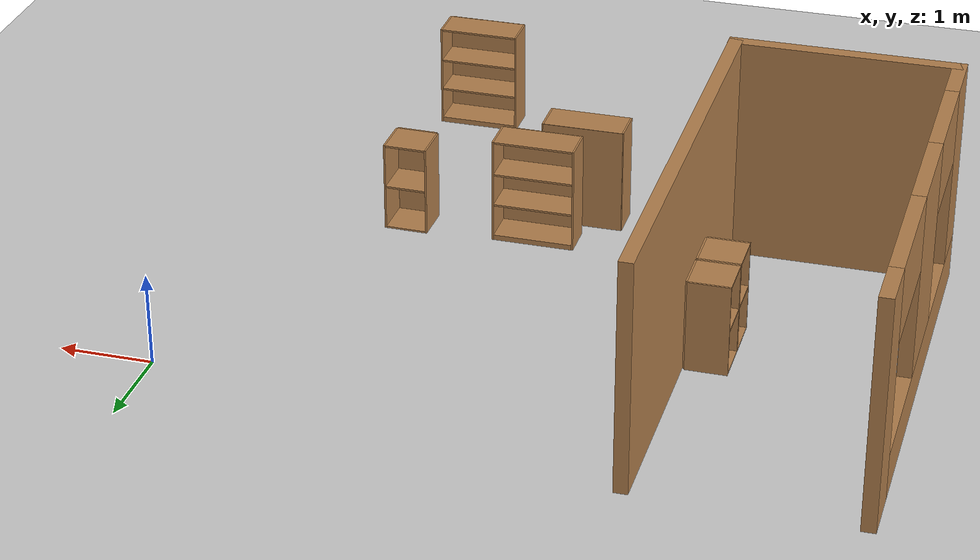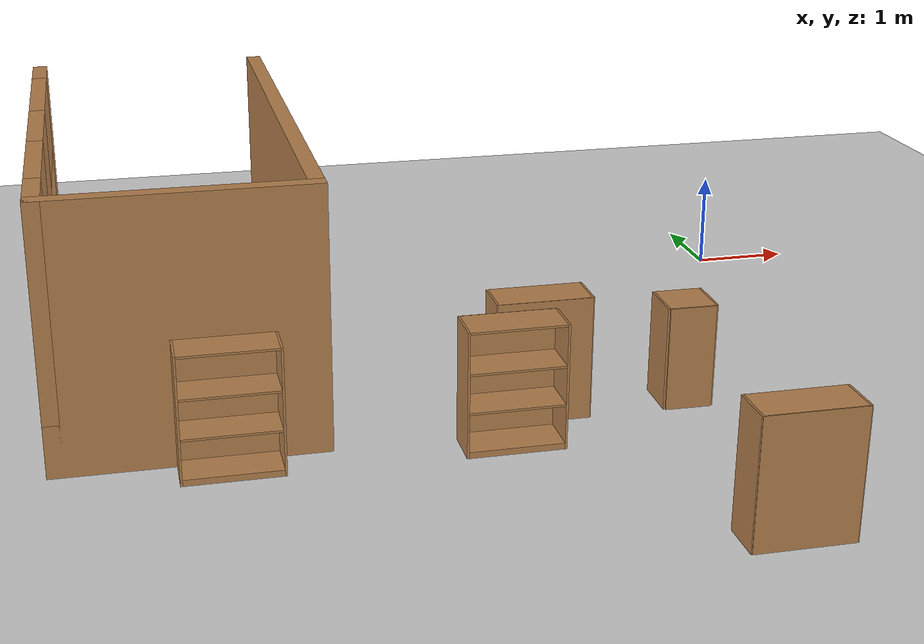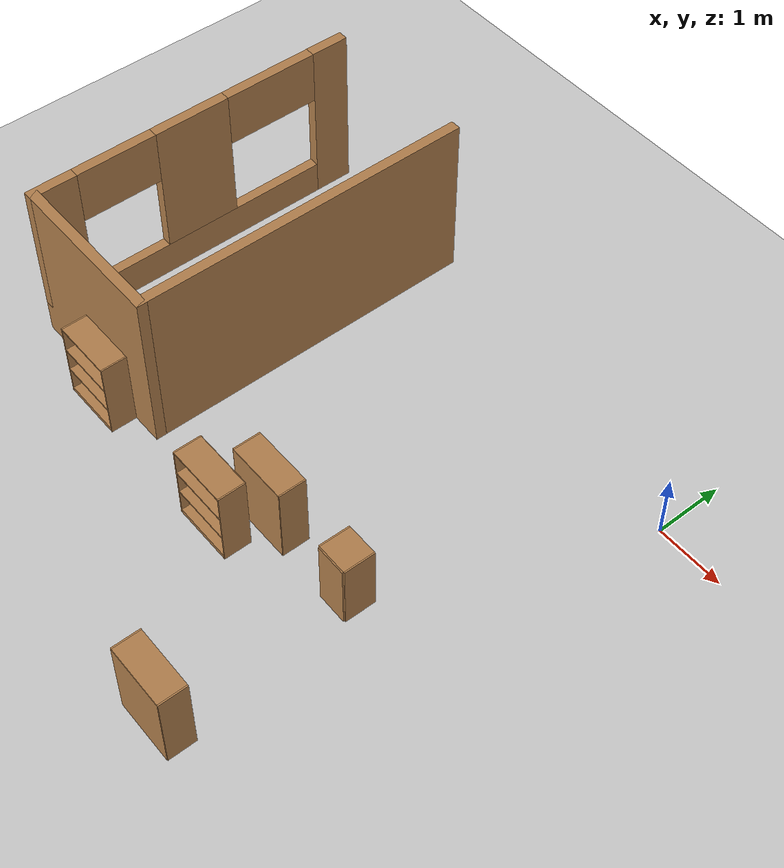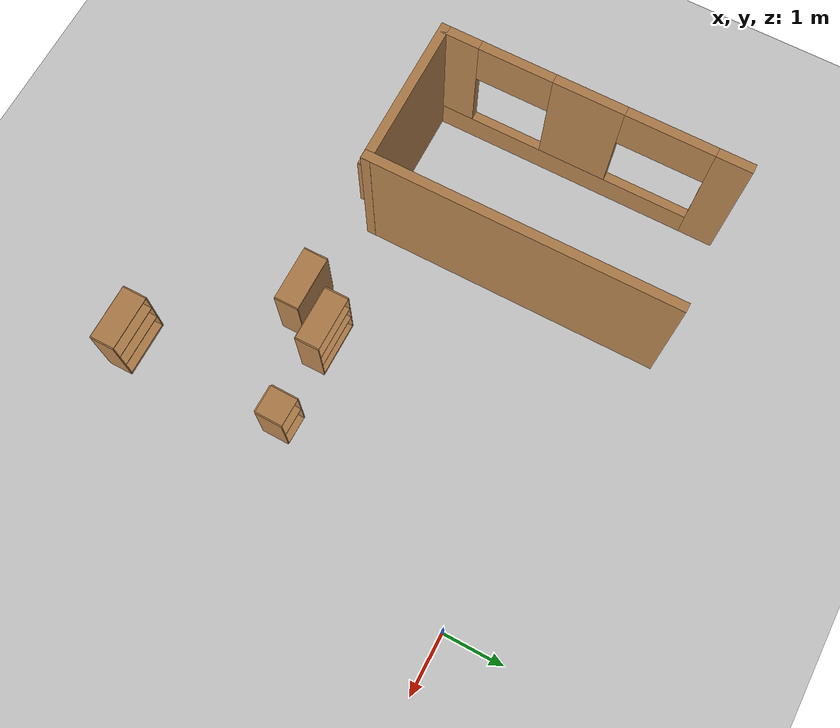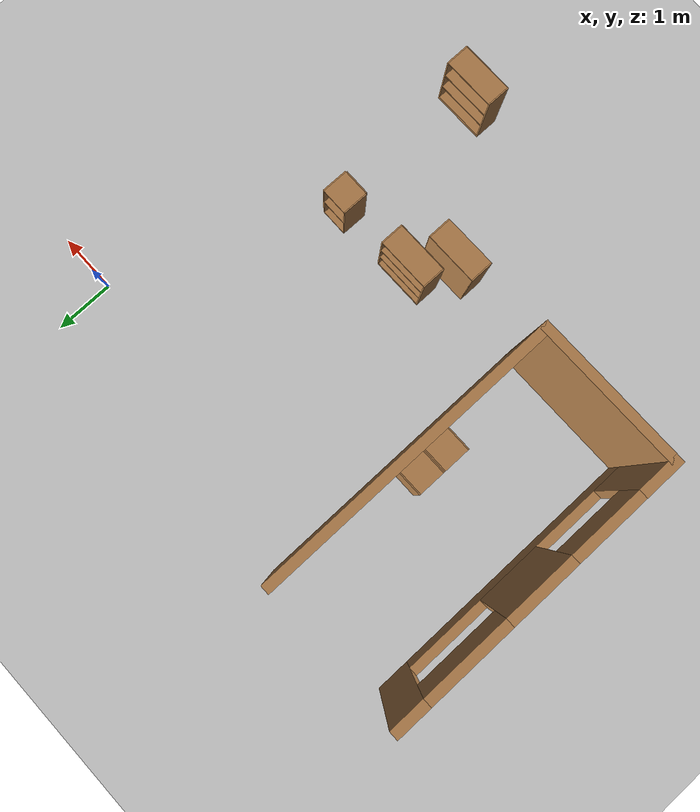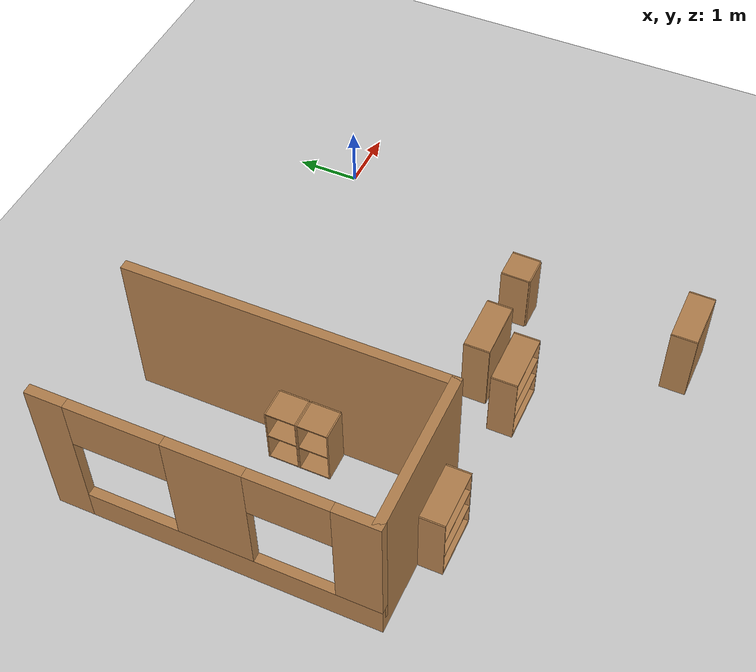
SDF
<sdf version="1.6">
 <world name="default">
  <model name="ground_plane">
   <static>1</static>
   <link name="link">
    <collision name="collision">
     <geometry><plane><normal>0 0 1</normal><size>100 100</size></plane></geometry>
     <surface>
      <contact><collide_bitmask>65535</collide_bitmask></contact>
      <friction><ode><mu>100</mu><mu2>50</mu2></ode></friction>
     </surface>
    </collision>
    <visual name="visual">
     <cast_shadows>0</cast_shadows>
     <geometry><plane><normal>0 0 1</normal><size>100 100</size></plane></geometry>
     <material>
      <script><uri>file://media/materials/scripts/gazebo.material</uri><name>Gazebo/Grey</name></script>
     </material>
    </visual>
   </link>
  </model>
  <model name="turtlebot3_house">
   <pose>0.006915 0.007382 0 0 -0 0</pose>
   <link name="Wall_86">
    <pose>-7.5 -1.5 0 0 0 -1.5708</pose>
    <visual name="Wall_86_Visual_1">
     <pose>0.28462 0 0.25 0 -0 0</pose>
     <geometry><box><size>4.43076 0.15 0.5</size></box></geometry>
     <material>
      <script><uri>file://media/materials/scripts/gazebo.material</uri><name>Gazebo/Wood</name></script>
      <ambient>1 1 1 1</ambient>
      <diffuse>1 1 1 1</diffuse>
      <specular>0.2 0.2 0.2 1</specular>
      <emissive>0 0 0 1</emissive>
     </material>
    </visual>
    <visual name="Wall_86_Visual_4">
     <pose>-1.22476 0 2.1 0 -0 0</pose>
     <geometry><box><size>1.412 0.15 0.8</size></box></geometry>
     <material>
      <script><uri>file://media/materials/scripts/gazebo.material</uri><name>Gazebo/Wood</name></script>
      <ambient>1 1 1 1</ambient>
      <diffuse>1 1 1 1</diffuse>
      <specular>0.2 0.2 0.2 1</specular>
      <emissive>0 0 0 1</emissive>
     </material>
    </visual>
    <visual name="Wall_86_Visual_0">
     <pose>-2.21538 0 1.25 0 -0 0</pose>
     <geometry><box><size>0.569241 0.15 2.5</size></box></geometry>
     <material>
      <script><uri>file://media/materials/scripts/gazebo.material</uri><name>Gazebo/Wood</name></script>
      <ambient>1 1 1 1</ambient>
      <diffuse>1 1 1 1</diffuse>
      <specular>0.2 0.2 0.2 1</specular>
      <emissive>0 0 0 1</emissive>
     </material>
    </visual>
    <visual name="Wall_86_Visual_5">
     <pose>1.22246 0 2.1 0 -0 0</pose>
     <geometry><box><size>1.199 0.15 0.8</size></box></geometry>
     <material>
      <script><uri>file://media/materials/scripts/gazebo.material</uri><name>Gazebo/Wood</name></script>
      <ambient>1 1 1 1</ambient>
      <diffuse>1 1 1 1</diffuse>
      <specular>0.2 0.2 0.2 1</specular>
      <emissive>0 0 0 1</emissive>
     </material>
    </visual>
    <visual name="Wall_86_Visual_2">
     <pose>0.0521 0 1.5 0 -0 0</pose>
     <geometry><box><size>1.14172 0.15 2</size></box></geometry>
     <material>
      <script><uri>file://media/materials/scripts/gazebo.material</uri><name>Gazebo/Wood</name></script>
      <ambient>1 1 1 1</ambient>
      <diffuse>1 1 1 1</diffuse>
      <specular>0.2 0.2 0.2 1</specular>
      <emissive>0 0 0 1</emissive>
     </material>
    </visual>
    <visual name="Wall_86_Visual_3">
     <pose>2.16098 0 1.5 0 -0 0</pose>
     <geometry><box><size>0.678041 0.15 2</size></box></geometry>
     <material>
      <script><uri>file://media/materials/scripts/gazebo.material</uri><name>Gazebo/Wood</name></script>
      <ambient>1 1 1 1</ambient>
      <diffuse>1 1 1 1</diffuse>
      <specular>0.2 0.2 0.2 1</specular>
      <emissive>0 0 0 1</emissive>
     </material>
    </visual>
    <collision name="Wall_86_Collision_4">
     <pose>-1.22476 0 2.1 0 -0 0</pose>
     <geometry><box><size>1.412 0.15 0.8</size></box></geometry>
     <surface>
      <friction>
       <ode><mu>1</mu><mu2>1</mu2><fdir1>0 0 0</fdir1><slip1>0</slip1><slip2>0</slip2></ode>
       <torsional>
        <coefficient>1</coefficient>
        <patch_radius>0</patch_radius>
        <surface_radius>0</surface_radius>
        <use_patch_radius>1</use_patch_radius>
        <ode><slip>0</slip></ode>
       </torsional>
      </friction>
      <bounce><restitution_coefficient>0</restitution_coefficient><threshold>1e+06</threshold></bounce>
      <contact>
       <collide_without_contact>0</collide_without_contact>
       <collide_without_contact_bitmask>1</collide_without_contact_bitmask>
       <collide_bitmask>1</collide_bitmask>
       <ode>
        <soft_cfm>0</soft_cfm>
        <soft_erp>0.2</soft_erp>
        <kp>1e+13</kp>
        <kd>1</kd>
        <max_vel>0.01</max_vel>
        <min_depth>0</min_depth>
       </ode>
       <bullet>
        <split_impulse>1</split_impulse>
        <split_impulse_penetration_threshold>-0.01</split_impulse_penetration_threshold>
        <soft_cfm>0</soft_cfm>
        <soft_erp>0.2</soft_erp>
        <kp>1e+13</kp>
        <kd>1</kd>
       </bullet>
      </contact>
     </surface>
    </collision>
    <collision name="Wall_86_Collision_5">
     <pose>1.22246 0 2.1 0 -0 0</pose>
     <geometry><box><size>1.199 0.15 0.8</size></box></geometry>
     <surface>
      <friction>
       <ode><mu>1</mu><mu2>1</mu2><fdir1>0 0 0</fdir1><slip1>0</slip1><slip2>0</slip2></ode>
       <torsional>
        <coefficient>1</coefficient>
        <patch_radius>0</patch_radius>
        <surface_radius>0</surface_radius>
        <use_patch_radius>1</use_patch_radius>
        <ode><slip>0</slip></ode>
       </torsional>
      </friction>
      <bounce><restitution_coefficient>0</restitution_coefficient><threshold>1e+06</threshold></bounce>
      <contact>
       <collide_without_contact>0</collide_without_contact>
       <collide_without_contact_bitmask>1</collide_without_contact_bitmask>
       <collide_bitmask>1</collide_bitmask>
       <ode>
        <soft_cfm>0</soft_cfm>
        <soft_erp>0.2</soft_erp>
        <kp>1e+13</kp>
        <kd>1</kd>
        <max_vel>0.01</max_vel>
        <min_depth>0</min_depth>
       </ode>
       <bullet>
        <split_impulse>1</split_impulse>
        <split_impulse_penetration_threshold>-0.01</split_impulse_penetration_threshold>
        <soft_cfm>0</soft_cfm>
        <soft_erp>0.2</soft_erp>
        <kp>1e+13</kp>
        <kd>1</kd>
       </bullet>
      </contact>
     </surface>
    </collision>
    <collision name="Wall_86_Collision_2">
     <pose>0.0521 0 1.5 0 -0 0</pose>
     <geometry><box><size>1.14172 0.15 2</size></box></geometry>
     <surface>
      <friction>
       <ode><mu>1</mu><mu2>1</mu2><fdir1>0 0 0</fdir1><slip1>0</slip1><slip2>0</slip2></ode>
       <torsional>
        <coefficient>1</coefficient>
        <patch_radius>0</patch_radius>
        <surface_radius>0</surface_radius>
        <use_patch_radius>1</use_patch_radius>
        <ode><slip>0</slip></ode>
       </torsional>
      </friction>
      <bounce><restitution_coefficient>0</restitution_coefficient><threshold>1e+06</threshold></bounce>
      <contact>
       <collide_without_contact>0</collide_without_contact>
       <collide_without_contact_bitmask>1</collide_without_contact_bitmask>
       <collide_bitmask>1</collide_bitmask>
       <ode>
        <soft_cfm>0</soft_cfm>
        <soft_erp>0.2</soft_erp>
        <kp>1e+13</kp>
        <kd>1</kd>
        <max_vel>0.01</max_vel>
        <min_depth>0</min_depth>
       </ode>
       <bullet>
        <split_impulse>1</split_impulse>
        <split_impulse_penetration_threshold>-0.01</split_impulse_penetration_threshold>
        <soft_cfm>0</soft_cfm>
        <soft_erp>0.2</soft_erp>
        <kp>1e+13</kp>
        <kd>1</kd>
       </bullet>
      </contact>
     </surface>
    </collision>
    <collision name="Wall_86_Collision_1">
     <pose>0.28462 0 0.25 0 -0 0</pose>
     <geometry><box><size>4.43076 0.15 0.5</size></box></geometry>
     <surface>
      <friction>
       <ode><mu>1</mu><mu2>1</mu2><fdir1>0 0 0</fdir1><slip1>0</slip1><slip2>0</slip2></ode>
       <torsional>
        <coefficient>1</coefficient>
        <patch_radius>0</patch_radius>
        <surface_radius>0</surface_radius>
        <use_patch_radius>1</use_patch_radius>
        <ode><slip>0</slip></ode>
       </torsional>
      </friction>
      <bounce><restitution_coefficient>0</restitution_coefficient><threshold>1e+06</threshold></bounce>
      <contact>
       <collide_without_contact>0</collide_without_contact>
       <collide_without_contact_bitmask>1</collide_without_contact_bitmask>
       <collide_bitmask>1</collide_bitmask>
       <ode>
        <soft_cfm>0</soft_cfm>
        <soft_erp>0.2</soft_erp>
        <kp>1e+13</kp>
        <kd>1</kd>
        <max_vel>0.01</max_vel>
        <min_depth>0</min_depth>
       </ode>
       <bullet>
        <split_impulse>1</split_impulse>
        <split_impulse_penetration_threshold>-0.01</split_impulse_penetration_threshold>
        <soft_cfm>0</soft_cfm>
        <soft_erp>0.2</soft_erp>
        <kp>1e+13</kp>
        <kd>1</kd>
       </bullet>
      </contact>
     </surface>
    </collision>
    <collision name="Wall_86_Collision_3">
     <pose>2.16098 0 1.5 0 -0 0</pose>
     <geometry><box><size>0.678041 0.15 2</size></box></geometry>
     <surface>
      <friction>
       <ode><mu>1</mu><mu2>1</mu2><fdir1>0 0 0</fdir1><slip1>0</slip1><slip2>0</slip2></ode>
       <torsional>
        <coefficient>1</coefficient>
        <patch_radius>0</patch_radius>
        <surface_radius>0</surface_radius>
        <use_patch_radius>1</use_patch_radius>
        <ode><slip>0</slip></ode>
       </torsional>
      </friction>
      <bounce><restitution_coefficient>0</restitution_coefficient><threshold>1e+06</threshold></bounce>
      <contact>
       <collide_without_contact>0</collide_without_contact>
       <collide_without_contact_bitmask>1</collide_without_contact_bitmask>
       <collide_bitmask>1</collide_bitmask>
       <ode>
        <soft_cfm>0</soft_cfm>
        <soft_erp>0.2</soft_erp>
        <kp>1e+13</kp>
        <kd>1</kd>
        <max_vel>0.01</max_vel>
        <min_depth>0</min_depth>
       </ode>
       <bullet>
        <split_impulse>1</split_impulse>
        <split_impulse_penetration_threshold>-0.01</split_impulse_penetration_threshold>
        <soft_cfm>0</soft_cfm>
        <soft_erp>0.2</soft_erp>
        <kp>1e+13</kp>
        <kd>1</kd>
       </bullet>
      </contact>
     </surface>
    </collision>
    <collision name="Wall_86_Collision_0">
     <pose>-2.21538 0 1.25 0 -0 0</pose>
     <geometry><box><size>0.569241 0.15 2.5</size></box></geometry>
     <surface>
      <friction>
       <ode><mu>1</mu><mu2>1</mu2><fdir1>0 0 0</fdir1><slip1>0</slip1><slip2>0</slip2></ode>
       <torsional>
        <coefficient>1</coefficient>
        <patch_radius>0</patch_radius>
        <surface_radius>0</surface_radius>
        <use_patch_radius>1</use_patch_radius>
        <ode><slip>0</slip></ode>
       </torsional>
      </friction>
      <bounce><restitution_coefficient>0</restitution_coefficient><threshold>1e+06</threshold></bounce>
      <contact>
       <collide_without_contact>0</collide_without_contact>
       <collide_without_contact_bitmask>1</collide_without_contact_bitmask>
       <collide_bitmask>1</collide_bitmask>
       <ode>
        <soft_cfm>0</soft_cfm>
        <soft_erp>0.2</soft_erp>
        <kp>1e+13</kp>
        <kd>1</kd>
        <max_vel>0.01</max_vel>
        <min_depth>0</min_depth>
       </ode>
       <bullet>
        <split_impulse>1</split_impulse>
        <split_impulse_penetration_threshold>-0.01</split_impulse_penetration_threshold>
        <soft_cfm>0</soft_cfm>
        <soft_erp>0.2</soft_erp>
        <kp>1e+13</kp>
        <kd>1</kd>
       </bullet>
      </contact>
     </surface>
    </collision>
   </link>
   <link name="Wall_87">
    <pose>-6.325 -3.925 0 0 -0 0</pose>
    <visual name="Wall_87_Visual">
     <pose>0 0 1.25 0 -0 0</pose>
     <geometry><box><size>2.5 0.15 2.5</size></box></geometry>
     <material>
      <script><uri>file://media/materials/scripts/gazebo.material</uri><name>Gazebo/Wood</name></script>
      <ambient>1 1 1 1</ambient>
      <diffuse>1 1 1 1</diffuse>
      <specular>0.2 0.2 0.2 1</specular>
      <emissive>0 0 0 1</emissive>
     </material>
    </visual>
    <collision name="Wall_87_Collision">
     <pose>0 0 1.25 0 -0 0</pose>
     <geometry><box><size>2.5 0.15 2.5</size></box></geometry>
     <surface>
      <friction>
       <ode><mu>1</mu><mu2>1</mu2><fdir1>0 0 0</fdir1><slip1>0</slip1><slip2>0</slip2></ode>
       <torsional>
        <coefficient>1</coefficient>
        <patch_radius>0</patch_radius>
        <surface_radius>0</surface_radius>
        <use_patch_radius>1</use_patch_radius>
        <ode><slip>0</slip></ode>
       </torsional>
      </friction>
      <bounce><restitution_coefficient>0</restitution_coefficient><threshold>1e+06</threshold></bounce>
      <contact>
       <collide_without_contact>0</collide_without_contact>
       <collide_without_contact_bitmask>1</collide_without_contact_bitmask>
       <collide_bitmask>1</collide_bitmask>
       <ode>
        <soft_cfm>0</soft_cfm>
        <soft_erp>0.2</soft_erp>
        <kp>1e+13</kp>
        <kd>1</kd>
        <max_vel>0.01</max_vel>
        <min_depth>0</min_depth>
       </ode>
       <bullet>
        <split_impulse>1</split_impulse>
        <split_impulse_penetration_threshold>-0.01</split_impulse_penetration_threshold>
        <soft_cfm>0</soft_cfm>
        <soft_erp>0.2</soft_erp>
        <kp>1e+13</kp>
        <kd>1</kd>
       </bullet>
      </contact>
     </surface>
    </collision>
   </link>
   <link name="Wall_88">
    <pose>-5.15151 -1.49625 0 0 -0 1.5708</pose>
    <visual name="Wall_88_Visual">
     <pose>0 0 1.25 0 -0 0</pose>
     <geometry><box><size>5 0.15 2.5</size></box></geometry>
     <material>
      <script><uri>file://media/materials/scripts/gazebo.material</uri><name>Gazebo/Wood</name></script>
      <ambient>1 1 1 1</ambient>
      <diffuse>1 1 1 1</diffuse>
      <specular>0.2 0.2 0.2 1</specular>
      <emissive>0 0 0 1</emissive>
     </material>
    </visual>
    <collision name="Wall_88_Collision">
     <pose>0 0 1.25 0 -0 0</pose>
     <geometry><box><size>5 0.15 2.5</size></box></geometry>
     <surface>
      <friction>
       <ode><mu>1</mu><mu2>1</mu2><fdir1>0 0 0</fdir1><slip1>0</slip1><slip2>0</slip2></ode>
       <torsional>
        <coefficient>1</coefficient>
        <patch_radius>0</patch_radius>
        <surface_radius>0</surface_radius>
        <use_patch_radius>1</use_patch_radius>
        <ode><slip>0</slip></ode>
       </torsional>
      </friction>
      <bounce><restitution_coefficient>0</restitution_coefficient><threshold>1e+06</threshold></bounce>
      <contact>
       <collide_without_contact>0</collide_without_contact>
       <collide_without_contact_bitmask>1</collide_without_contact_bitmask>
       <collide_bitmask>1</collide_bitmask>
       <ode>
        <soft_cfm>0</soft_cfm>
        <soft_erp>0.2</soft_erp>
        <kp>1e+13</kp>
        <kd>1</kd>
        <max_vel>0.01</max_vel>
        <min_depth>0</min_depth>
       </ode>
       <bullet>
        <split_impulse>1</split_impulse>
        <split_impulse_penetration_threshold>-0.01</split_impulse_penetration_threshold>
        <soft_cfm>0</soft_cfm>
        <soft_erp>0.2</soft_erp>
        <kp>1e+13</kp>
        <kd>1</kd>
       </bullet>
      </contact>
     </surface>
    </collision>
   </link>
   <model name="cabinet">
    <static>1</static>
    <link name="cabinet_bottom_plate">
     <inertial>
      <pose>0 0 -1 0 -0 0</pose>
      <inertia><ixx>2.05</ixx><ixy>0</ixy><ixz>0</ixz><iyy>2.05</iyy><iyz>0</iyz><izz>2.05</izz></inertia>
      <mass>25</mass>
     </inertial>
     <collision name="cabinet_bottom_plate_geom">
      <pose>0 0 0.01 0 -0 0</pose>
      <geometry><box><size>0.45 0.45 0.02</size></box></geometry>
     </collision>
     <visual name="cabinet_bottom_plate_geom_visual">
      <pose>0 0 0.01 0 -0 0</pose>
      <geometry><box><size>0.45 0.45 0.02</size></box></geometry>
      <material>
       <script><uri>file://media/materials/scripts/gazebo.material</uri><name>Gazebo/Wood</name></script>
      </material>
     </visual>
     <collision name="cabinet_bottom_plate_geom_cabinet_back_plate">
      <pose>0.235 0 0.51 0 -0 0</pose>
      <geometry><box><size>0.02 0.45 1.02</size></box></geometry>
     </collision>
     <visual name="cabinet_bottom_plate_geom_cabinet_back_plate_visual">
      <pose>0.235 0 0.51 0 -0 0</pose>
      <geometry><box><size>0.02 0.45 1.02</size></box></geometry>
      <material>
       <script><uri>file://media/materials/scripts/gazebo.material</uri><name>Gazebo/Wood</name></script>
      </material>
     </visual>
     <collision name="cabinet_bottom_plate_geom_cabinet_left_plate">
      <pose>0 0.235 0.51 0 -0 0</pose>
      <geometry><box><size>0.45 0.02 1.02</size></box></geometry>
     </collision>
     <visual name="cabinet_bottom_plate_geom_cabinet_left_plate_visual">
      <pose>0 0.235 0.51 0 -0 0</pose>
      <geometry><box><size>0.45 0.02 1.02</size></box></geometry>
      <material>
       <script><uri>file://media/materials/scripts/gazebo.material</uri><name>Gazebo/Wood</name></script>
      </material>
     </visual>
     <collision name="cabinet_bottom_plate_geom_cabinet_middle_plate">
      <pose>0 0 0.51 0 -0 0</pose>
      <geometry><box><size>0.45 0.45 0.02</size></box></geometry>
     </collision>
     <visual name="cabinet_bottom_plate_geom_cabinet_middle_plate_visual">
      <pose>0 0 0.51 0 -0 0</pose>
      <geometry><box><size>0.45 0.45 0.02</size></box></geometry>
      <material>
       <script><uri>file://media/materials/scripts/gazebo.material</uri><name>Gazebo/Wood</name></script>
      </material>
     </visual>
     <collision name="cabinet_bottom_plate_geom_cabinet_right_plate">
      <pose>0 -0.235 0.51 0 -0 0</pose>
      <geometry><box><size>0.45 0.02 1.02</size></box></geometry>
     </collision>
     <visual name="cabinet_bottom_plate_geom_cabinet_right_plate_visual">
      <pose>0 -0.235 0.51 0 -0 0</pose>
      <geometry><box><size>0.45 0.02 1.02</size></box></geometry>
      <material>
       <script><uri>file://media/materials/scripts/gazebo.material</uri><name>Gazebo/Wood</name></script>
      </material>
     </visual>
     <collision name="cabinet_bottom_plate_geom_cabinet_top_plate">
      <pose>0 0 1.01 0 -0 0</pose>
      <geometry><box><size>0.45 0.45 0.02</size></box></geometry>
     </collision>
     <visual name="cabinet_bottom_plate_geom_cabinet_top_plate_visual">
      <pose>0 0 1.01 0 -0 0</pose>
      <geometry><box><size>0.45 0.45 0.02</size></box></geometry>
      <material>
       <script><uri>file://media/materials/scripts/gazebo.material</uri><name>Gazebo/Wood</name></script>
      </material>
     </visual>
    </link>
    <pose>-5.472 -1.57624 0 0 -0 0</pose>
   </model>
   <model name="cabinet_0">
    <static>1</static>
    <link name="cabinet_bottom_plate">
     <inertial>
      <pose>0 0 -1 0 -0 0</pose>
      <inertia><ixx>2.05</ixx><ixy>0</ixy><ixz>0</ixz><iyy>2.05</iyy><iyz>0</iyz><izz>2.05</izz></inertia>
      <mass>25</mass>
     </inertial>
     <collision name="cabinet_bottom_plate_geom">
      <pose>0 0 0.01 0 -0 0</pose>
      <geometry><box><size>0.45 0.45 0.02</size></box></geometry>
     </collision>
     <visual name="cabinet_bottom_plate_geom_visual">
      <pose>0 0 0.01 0 -0 0</pose>
      <geometry><box><size>0.45 0.45 0.02</size></box></geometry>
      <material>
       <script><uri>file://media/materials/scripts/gazebo.material</uri><name>Gazebo/Wood</name></script>
      </material>
     </visual>
     <collision name="cabinet_bottom_plate_geom_cabinet_back_plate">
      <pose>0.235 0 0.51 0 -0 0</pose>
      <geometry><box><size>0.02 0.45 1.02</size></box></geometry>
     </collision>
     <visual name="cabinet_bottom_plate_geom_cabinet_back_plate_visual">
      <pose>0.235 0 0.51 0 -0 0</pose>
      <geometry><box><size>0.02 0.45 1.02</size></box></geometry>
      <material>
       <script><uri>file://media/materials/scripts/gazebo.material</uri><name>Gazebo/Wood</name></script>
      </material>
     </visual>
     <collision name="cabinet_bottom_plate_geom_cabinet_left_plate">
      <pose>0 0.235 0.51 0 -0 0</pose>
      <geometry><box><size>0.45 0.02 1.02</size></box></geometry>
     </collision>
     <visual name="cabinet_bottom_plate_geom_cabinet_left_plate_visual">
      <pose>0 0.235 0.51 0 -0 0</pose>
      <geometry><box><size>0.45 0.02 1.02</size></box></geometry>
      <material>
       <script><uri>file://media/materials/scripts/gazebo.material</uri><name>Gazebo/Wood</name></script>
      </material>
     </visual>
     <collision name="cabinet_bottom_plate_geom_cabinet_middle_plate">
      <pose>0 0 0.51 0 -0 0</pose>
      <geometry><box><size>0.45 0.45 0.02</size></box></geometry>
     </collision>
     <visual name="cabinet_bottom_plate_geom_cabinet_middle_plate_visual">
      <pose>0 0 0.51 0 -0 0</pose>
      <geometry><box><size>0.45 0.45 0.02</size></box></geometry>
      <material>
       <script><uri>file://media/materials/scripts/gazebo.material</uri><name>Gazebo/Wood</name></script>
      </material>
     </visual>
     <collision name="cabinet_bottom_plate_geom_cabinet_right_plate">
      <pose>0 -0.235 0.51 0 -0 0</pose>
      <geometry><box><size>0.45 0.02 1.02</size></box></geometry>
     </collision>
     <visual name="cabinet_bottom_plate_geom_cabinet_right_plate_visual">
      <pose>0 -0.235 0.51 0 -0 0</pose>
      <geometry><box><size>0.45 0.02 1.02</size></box></geometry>
      <material>
       <script><uri>file://media/materials/scripts/gazebo.material</uri><name>Gazebo/Wood</name></script>
      </material>
     </visual>
     <collision name="cabinet_bottom_plate_geom_cabinet_top_plate">
      <pose>0 0 1.01 0 -0 0</pose>
      <geometry><box><size>0.45 0.45 0.02</size></box></geometry>
     </collision>
     <visual name="cabinet_bottom_plate_geom_cabinet_top_plate_visual">
      <pose>0 0 1.01 0 -0 0</pose>
      <geometry><box><size>0.45 0.45 0.02</size></box></geometry>
      <material>
       <script><uri>file://media/materials/scripts/gazebo.material</uri><name>Gazebo/Wood</name></script>
      </material>
     </visual>
    </link>
    <pose>-5.47289 -2.06545 0 0 -0 0</pose>
   </model>
   <static>1</static>
  </model>
  <model name="cabinet_2">
   <static>1</static>
   <link name="cabinet_bottom_plate">
    <inertial>
     <pose>0 0 -1 0 -0 0</pose>
     <inertia><ixx>2.05</ixx><ixy>0</ixy><ixz>0</ixz><iyy>2.05</iyy><iyz>0</iyz><izz>2.05</izz></inertia>
     <mass>25</mass>
    </inertial>
    <collision name="cabinet_bottom_plate_geom">
     <pose>0 0 0.01 0 -0 0</pose>
     <geometry><box><size>0.45 0.45 0.02</size></box></geometry>
    </collision>
    <visual name="cabinet_bottom_plate_geom_visual">
     <pose>0 0 0.01 0 -0 0</pose>
     <geometry><box><size>0.45 0.45 0.02</size></box></geometry>
     <material>
      <script><uri>file://media/materials/scripts/gazebo.material</uri><name>Gazebo/Wood</name></script>
     </material>
    </visual>
    <collision name="cabinet_bottom_plate_geom_cabinet_back_plate">
     <pose>0.235 0 0.51 0 -0 0</pose>
     <geometry><box><size>0.02 0.45 1.02</size></box></geometry>
    </collision>
    <visual name="cabinet_bottom_plate_geom_cabinet_back_plate_visual">
     <pose>0.235 0 0.51 0 -0 0</pose>
     <geometry><box><size>0.02 0.45 1.02</size></box></geometry>
     <material>
      <script><uri>file://media/materials/scripts/gazebo.material</uri><name>Gazebo/Wood</name></script>
     </material>
    </visual>
    <collision name="cabinet_bottom_plate_geom_cabinet_left_plate">
     <pose>0 0.235 0.51 0 -0 0</pose>
     <geometry><box><size>0.45 0.02 1.02</size></box></geometry>
    </collision>
    <visual name="cabinet_bottom_plate_geom_cabinet_left_plate_visual">
     <pose>0 0.235 0.51 0 -0 0</pose>
     <geometry><box><size>0.45 0.02 1.02</size></box></geometry>
     <material>
      <script><uri>file://media/materials/scripts/gazebo.material</uri><name>Gazebo/Wood</name></script>
     </material>
    </visual>
    <collision name="cabinet_bottom_plate_geom_cabinet_middle_plate">
     <pose>0 0 0.51 0 -0 0</pose>
     <geometry><box><size>0.45 0.45 0.02</size></box></geometry>
    </collision>
    <visual name="cabinet_bottom_plate_geom_cabinet_middle_plate_visual">
     <pose>0 0 0.51 0 -0 0</pose>
     <geometry><box><size>0.45 0.45 0.02</size></box></geometry>
     <material>
      <script><uri>file://media/materials/scripts/gazebo.material</uri><name>Gazebo/Wood</name></script>
     </material>
    </visual>
    <collision name="cabinet_bottom_plate_geom_cabinet_right_plate">
     <pose>0 -0.235 0.51 0 -0 0</pose>
     <geometry><box><size>0.45 0.02 1.02</size></box></geometry>
    </collision>
    <visual name="cabinet_bottom_plate_geom_cabinet_right_plate_visual">
     <pose>0 -0.235 0.51 0 -0 0</pose>
     <geometry><box><size>0.45 0.02 1.02</size></box></geometry>
     <material>
      <script><uri>file://media/materials/scripts/gazebo.material</uri><name>Gazebo/Wood</name></script>
     </material>
    </visual>
    <collision name="cabinet_bottom_plate_geom_cabinet_top_plate">
     <pose>0 0 1.01 0 -0 0</pose>
     <geometry><box><size>0.45 0.45 0.02</size></box></geometry>
    </collision>
    <visual name="cabinet_bottom_plate_geom_cabinet_top_plate_visual">
     <pose>0 0 1.01 0 -0 0</pose>
     <geometry><box><size>0.45 0.45 0.02</size></box></geometry>
     <material>
      <script><uri>file://media/materials/scripts/gazebo.material</uri><name>Gazebo/Wood</name></script>
     </material>
    </visual>
   </link>
   <pose>-1.64879 -3.58023 0 0 0 -1.58489</pose>
  </model>
  <model name="bookshelf_2">
   <static>1</static>
   <link name="link">
    <inertial><mass>1</mass></inertial>
    <collision name="back">
     <pose>0 0.005 0.6 0 -0 0</pose>
     <geometry><box><size>0.9 0.01 1.2</size></box></geometry>
    </collision>
    <visual name="visual1">
     <pose>0 0.005 0.6 0 -0 0</pose>
     <geometry><box><size>0.9 0.01 1.2</size></box></geometry>
     <material>
      <script><uri>file://media/materials/scripts/gazebo.material</uri><name>Gazebo/Wood</name></script>
     </material>
    </visual>
    <collision name="left_side">
     <pose>0.45 -0.195 0.6 0 -0 0</pose>
     <geometry><box><size>0.02 0.4 1.2</size></box></geometry>
    </collision>
    <visual name="visual2">
     <pose>0.45 -0.195 0.6 0 -0 0</pose>
     <geometry><box><size>0.02 0.4 1.2</size></box></geometry>
     <material>
      <script><uri>file://media/materials/scripts/gazebo.material</uri><name>Gazebo/Wood</name></script>
     </material>
    </visual>
    <collision name="right_side">
     <pose>-0.45 -0.195 0.6 0 -0 0</pose>
     <geometry><box><size>0.02 0.4 1.2</size></box></geometry>
    </collision>
    <visual name="visual3">
     <pose>-0.45 -0.195 0.6 0 -0 0</pose>
     <geometry><box><size>0.02 0.4 1.2</size></box></geometry>
     <material>
      <script><uri>file://media/materials/scripts/gazebo.material</uri><name>Gazebo/Wood</name></script>
     </material>
    </visual>
    <collision name="bottom">
     <pose>0 -0.195 0.03 0 -0 0</pose>
     <geometry><box><size>0.88 0.4 0.06</size></box></geometry>
    </collision>
    <visual name="visual4">
     <pose>0 -0.195 0.03 0 -0 0</pose>
     <geometry><box><size>0.88 0.4 0.06</size></box></geometry>
     <material>
      <script><uri>file://media/materials/scripts/gazebo.material</uri><name>Gazebo/Wood</name></script>
     </material>
    </visual>
    <collision name="top">
     <pose>0 -0.195 1.19 0 -0 0</pose>
     <geometry><box><size>0.88 0.4 0.02</size></box></geometry>
    </collision>
    <visual name="visual5">
     <pose>0 -0.195 1.19 0 -0 0</pose>
     <geometry><box><size>0.88 0.4 0.02</size></box></geometry>
     <material>
      <script><uri>file://media/materials/scripts/gazebo.material</uri><name>Gazebo/Wood</name></script>
     </material>
    </visual>
    <collision name="low_shelf">
     <pose>0 -0.195 0.43 0 -0 0</pose>
     <geometry><box><size>0.88 0.4 0.02</size></box></geometry>
    </collision>
    <visual name="visual6">
     <pose>0 -0.195 0.43 0 -0 0</pose>
     <geometry><box><size>0.88 0.4 0.02</size></box></geometry>
     <material>
      <script><uri>file://media/materials/scripts/gazebo.material</uri><name>Gazebo/Wood</name></script>
     </material>
    </visual>
    <collision name="high_shelf">
     <pose>0 -0.195 0.8 0 -0 0</pose>
     <geometry><box><size>0.88 0.4 0.02</size></box></geometry>
    </collision>
    <visual name="visual7">
     <pose>0 -0.195 0.8 0 -0 0</pose>
     <geometry><box><size>0.88 0.4 0.02</size></box></geometry>
     <material>
      <script><uri>file://media/materials/scripts/gazebo.material</uri><name>Gazebo/Wood</name></script>
     </material>
    </visual>
   </link>
   <pose>-3.07917 -3.80961 0 0 -0 3.13898</pose>
  </model>
  <model name="bookshelf_5">
   <static>1</static>
   <link name="link">
    <inertial><mass>1</mass></inertial>
    <collision name="back">
     <pose>0 0.005 0.6 0 -0 0</pose>
     <geometry><box><size>0.9 0.01 1.2</size></box></geometry>
    </collision>
    <visual name="visual1">
     <pose>0 0.005 0.6 0 -0 0</pose>
     <geometry><box><size>0.9 0.01 1.2</size></box></geometry>
     <material>
      <script><uri>file://media/materials/scripts/gazebo.material</uri><name>Gazebo/Wood</name></script>
     </material>
    </visual>
    <collision name="left_side">
     <pose>0.45 -0.195 0.6 0 -0 0</pose>
     <geometry><box><size>0.02 0.4 1.2</size></box></geometry>
    </collision>
    <visual name="visual2">
     <pose>0.45 -0.195 0.6 0 -0 0</pose>
     <geometry><box><size>0.02 0.4 1.2</size></box></geometry>
     <material>
      <script><uri>file://media/materials/scripts/gazebo.material</uri><name>Gazebo/Wood</name></script>
     </material>
    </visual>
    <collision name="right_side">
     <pose>-0.45 -0.195 0.6 0 -0 0</pose>
     <geometry><box><size>0.02 0.4 1.2</size></box></geometry>
    </collision>
    <visual name="visual3">
     <pose>-0.45 -0.195 0.6 0 -0 0</pose>
     <geometry><box><size>0.02 0.4 1.2</size></box></geometry>
     <material>
      <script><uri>file://media/materials/scripts/gazebo.material</uri><name>Gazebo/Wood</name></script>
     </material>
    </visual>
    <collision name="bottom">
     <pose>0 -0.195 0.03 0 -0 0</pose>
     <geometry><box><size>0.88 0.4 0.06</size></box></geometry>
    </collision>
    <visual name="visual4">
     <pose>0 -0.195 0.03 0 -0 0</pose>
     <geometry><box><size>0.88 0.4 0.06</size></box></geometry>
     <material>
      <script><uri>file://media/materials/scripts/gazebo.material</uri><name>Gazebo/Wood</name></script>
     </material>
    </visual>
    <collision name="top">
     <pose>0 -0.195 1.19 0 -0 0</pose>
     <geometry><box><size>0.88 0.4 0.02</size></box></geometry>
    </collision>
    <visual name="visual5">
     <pose>0 -0.195 1.19 0 -0 0</pose>
     <geometry><box><size>0.88 0.4 0.02</size></box></geometry>
     <material>
      <script><uri>file://media/materials/scripts/gazebo.material</uri><name>Gazebo/Wood</name></script>
     </material>
    </visual>
    <collision name="low_shelf">
     <pose>0 -0.195 0.43 0 -0 0</pose>
     <geometry><box><size>0.88 0.4 0.02</size></box></geometry>
    </collision>
    <visual name="visual6">
     <pose>0 -0.195 0.43 0 -0 0</pose>
     <geometry><box><size>0.88 0.4 0.02</size></box></geometry>
     <material>
      <script><uri>file://media/materials/scripts/gazebo.material</uri><name>Gazebo/Wood</name></script>
     </material>
    </visual>
    <collision name="high_shelf">
     <pose>0 -0.195 0.8 0 -0 0</pose>
     <geometry><box><size>0.88 0.4 0.02</size></box></geometry>
    </collision>
    <visual name="visual7">
     <pose>0 -0.195 0.8 0 -0 0</pose>
     <geometry><box><size>0.88 0.4 0.02</size></box></geometry>
     <material>
      <script><uri>file://media/materials/scripts/gazebo.material</uri><name>Gazebo/Wood</name></script>
     </material>
    </visual>
   </link>
   <pose>-3.48455 -4.00031 0 0 -0 0</pose>
  </model>
  <model name="bookshelf_6">
   <static>1</static>
   <link name="link">
    <inertial><mass>1</mass></inertial>
    <collision name="back">
     <pose>0 0.005 0.6 0 -0 0</pose>
     <geometry><box><size>0.9 0.01 1.2</size></box></geometry>
    </collision>
    <visual name="visual1">
     <pose>0 0.005 0.6 0 -0 0</pose>
     <geometry><box><size>0.9 0.01 1.2</size></box></geometry>
     <material>
      <script><uri>file://media/materials/scripts/gazebo.material</uri><name>Gazebo/Wood</name></script>
     </material>
    </visual>
    <collision name="left_side">
     <pose>0.45 -0.195 0.6 0 -0 0</pose>
     <geometry><box><size>0.02 0.4 1.2</size></box></geometry>
    </collision>
    <visual name="visual2">
     <pose>0.45 -0.195 0.6 0 -0 0</pose>
     <geometry><box><size>0.02 0.4 1.2</size></box></geometry>
     <material>
      <script><uri>file://media/materials/scripts/gazebo.material</uri><name>Gazebo/Wood</name></script>
     </material>
    </visual>
    <collision name="right_side">
     <pose>-0.45 -0.195 0.6 0 -0 0</pose>
     <geometry><box><size>0.02 0.4 1.2</size></box></geometry>
    </collision>
    <visual name="visual3">
     <pose>-0.45 -0.195 0.6 0 -0 0</pose>
     <geometry><box><size>0.02 0.4 1.2</size></box></geometry>
     <material>
      <script><uri>file://media/materials/scripts/gazebo.material</uri><name>Gazebo/Wood</name></script>
     </material>
    </visual>
    <collision name="bottom">
     <pose>0 -0.195 0.03 0 -0 0</pose>
     <geometry><box><size>0.88 0.4 0.06</size></box></geometry>
    </collision>
    <visual name="visual4">
     <pose>0 -0.195 0.03 0 -0 0</pose>
     <geometry><box><size>0.88 0.4 0.06</size></box></geometry>
     <material>
      <script><uri>file://media/materials/scripts/gazebo.material</uri><name>Gazebo/Wood</name></script>
     </material>
    </visual>
    <collision name="top">
     <pose>0 -0.195 1.19 0 -0 0</pose>
     <geometry><box><size>0.88 0.4 0.02</size></box></geometry>
    </collision>
    <visual name="visual5">
     <pose>0 -0.195 1.19 0 -0 0</pose>
     <geometry><box><size>0.88 0.4 0.02</size></box></geometry>
     <material>
      <script><uri>file://media/materials/scripts/gazebo.material</uri><name>Gazebo/Wood</name></script>
     </material>
    </visual>
    <collision name="low_shelf">
     <pose>0 -0.195 0.43 0 -0 0</pose>
     <geometry><box><size>0.88 0.4 0.02</size></box></geometry>
    </collision>
    <visual name="visual6">
     <pose>0 -0.195 0.43 0 -0 0</pose>
     <geometry><box><size>0.88 0.4 0.02</size></box></geometry>
     <material>
      <script><uri>file://media/materials/scripts/gazebo.material</uri><name>Gazebo/Wood</name></script>
     </material>
    </visual>
    <collision name="high_shelf">
     <pose>0 -0.195 0.8 0 -0 0</pose>
     <geometry><box><size>0.88 0.4 0.02</size></box></geometry>
    </collision>
    <visual name="visual7">
     <pose>0 -0.195 0.8 0 -0 0</pose>
     <geometry><box><size>0.88 0.4 0.02</size></box></geometry>
     <material>
      <script><uri>file://media/materials/scripts/gazebo.material</uri><name>Gazebo/Wood</name></script>
     </material>
    </visual>
   </link>
   <pose>-5.9928 -3.97432 0 0 -0 0</pose>
  </model>
  <model name="bookshelf_7">
   <static>1</static>
   <link name="link">
    <inertial><mass>1</mass></inertial>
    <collision name="back">
     <pose>0 0.005 0.6 0 -0 0</pose>
     <geometry><box><size>0.9 0.01 1.2</size></box></geometry>
    </collision>
    <visual name="visual1">
     <pose>0 0.005 0.6 0 -0 0</pose>
     <geometry><box><size>0.9 0.01 1.2</size></box></geometry>
     <material>
      <script><uri>file://media/materials/scripts/gazebo.material</uri><name>Gazebo/Wood</name></script>
     </material>
    </visual>
    <collision name="left_side">
     <pose>0.45 -0.195 0.6 0 -0 0</pose>
     <geometry><box><size>0.02 0.4 1.2</size></box></geometry>
    </collision>
    <visual name="visual2">
     <pose>0.45 -0.195 0.6 0 -0 0</pose>
     <geometry><box><size>0.02 0.4 1.2</size></box></geometry>
     <material>
      <script><uri>file://media/materials/scripts/gazebo.material</uri><name>Gazebo/Wood</name></script>
     </material>
    </visual>
    <collision name="right_side">
     <pose>-0.45 -0.195 0.6 0 -0 0</pose>
     <geometry><box><size>0.02 0.4 1.2</size></box></geometry>
    </collision>
    <visual name="visual3">
     <pose>-0.45 -0.195 0.6 0 -0 0</pose>
     <geometry><box><size>0.02 0.4 1.2</size></box></geometry>
     <material>
      <script><uri>file://media/materials/scripts/gazebo.material</uri><name>Gazebo/Wood</name></script>
     </material>
    </visual>
    <collision name="bottom">
     <pose>0 -0.195 0.03 0 -0 0</pose>
     <geometry><box><size>0.88 0.4 0.06</size></box></geometry>
    </collision>
    <visual name="visual4">
     <pose>0 -0.195 0.03 0 -0 0</pose>
     <geometry><box><size>0.88 0.4 0.06</size></box></geometry>
     <material>
      <script><uri>file://media/materials/scripts/gazebo.material</uri><name>Gazebo/Wood</name></script>
     </material>
    </visual>
    <collision name="top">
     <pose>0 -0.195 1.19 0 -0 0</pose>
     <geometry><box><size>0.88 0.4 0.02</size></box></geometry>
    </collision>
    <visual name="visual5">
     <pose>0 -0.195 1.19 0 -0 0</pose>
     <geometry><box><size>0.88 0.4 0.02</size></box></geometry>
     <material>
      <script><uri>file://media/materials/scripts/gazebo.material</uri><name>Gazebo/Wood</name></script>
     </material>
    </visual>
    <collision name="low_shelf">
     <pose>0 -0.195 0.43 0 -0 0</pose>
     <geometry><box><size>0.88 0.4 0.02</size></box></geometry>
    </collision>
    <visual name="visual6">
     <pose>0 -0.195 0.43 0 -0 0</pose>
     <geometry><box><size>0.88 0.4 0.02</size></box></geometry>
     <material>
      <script><uri>file://media/materials/scripts/gazebo.material</uri><name>Gazebo/Wood</name></script>
     </material>
    </visual>
    <collision name="high_shelf">
     <pose>0 -0.195 0.8 0 -0 0</pose>
     <geometry><box><size>0.88 0.4 0.02</size></box></geometry>
    </collision>
    <visual name="visual7">
     <pose>0 -0.195 0.8 0 -0 0</pose>
     <geometry><box><size>0.88 0.4 0.02</size></box></geometry>
     <material>
      <script><uri>file://media/materials/scripts/gazebo.material</uri><name>Gazebo/Wood</name></script>
     </material>
    </visual>
   </link>
   <pose>-1.69783 -6.454 0 0 -0 3.13746</pose>
  </model>
 </world>
</sdf>
